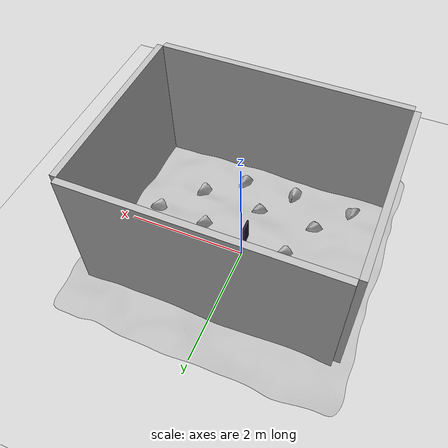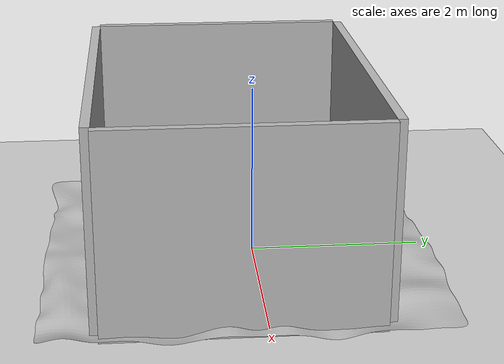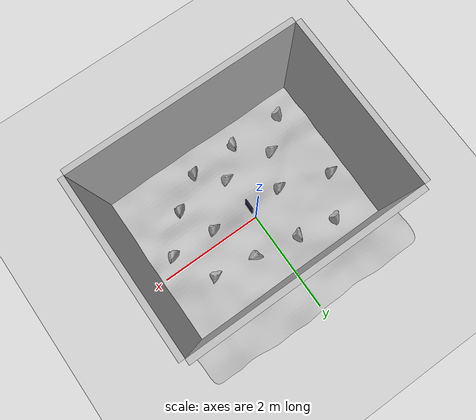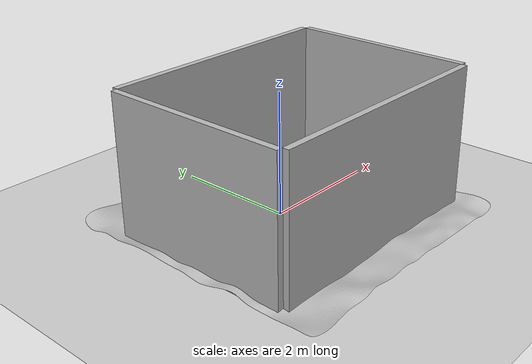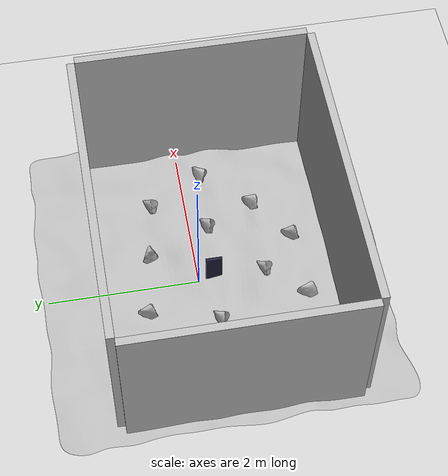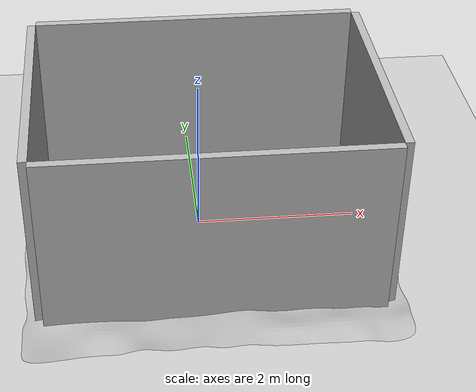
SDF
<sdf version="1.6">
 <world name="default">
  <model name="ground_plane">
   <static>1</static>
   <link name="link">
    <collision name="collision">
     <geometry><plane><normal>0 0 1</normal><size>100 100</size></plane></geometry>
     <surface><friction><ode><mu>100</mu><mu2>50</mu2></ode></friction></surface>
    </collision>
    <visual name="visual">
     <cast_shadows>0</cast_shadows>
     <geometry><plane><normal>0 0 1</normal><size>100 100</size></plane></geometry>
     <material>
      <script><uri>file://media/materials/scripts/gazebo.material</uri><name>Gazebo/Grey</name></script>
     </material>
    </visual>
   </link>
  </model>
  <gravity>0 0 -9.8</gravity>
  <magnetic_field>6e-06 2.3e-05 -4.2e-05</magnetic_field>
  <atmosphere type="adiabatic"/>
  <physics name="default_physics" default="0" type="ode">
   <max_step_size>0.02</max_step_size>
   <real_time_factor>1000</real_time_factor>
   <real_time_update_rate>0</real_time_update_rate>
  </physics>
  <scene>
   <ambient>0 0 0 1</ambient>
   <background>0 0 0 1</background>
   <grid>0</grid>
   <sky><time>13</time><sunrise>12</sunrise><sunset>12</sunset><clouds><humidity>0</humidity></clouds></sky>
   <shadows>1</shadows>
  </scene>
  <spherical_coordinates>
   <surface_model>EARTH_WGS84</surface_model>
   <latitude_deg>0</latitude_deg>
   <longitude_deg>0</longitude_deg>
   <elevation>0</elevation>
   <heading_deg>0</heading_deg>
  </spherical_coordinates>
  <model name="backwall">
   <pose>-1.98385 -0.26563 1.143 0 -0 0</pose>
   <static>1</static>
   <link name="link">
    <inertial>
     <mass>10</mass>
     <inertia><ixx>11.8074</ixx><ixy>0</ixy><ixz>0</ixz><iyy>4.34598</iyy><iyz>0</iyz><izz>7.47857</izz></inertia>
    </inertial>
    <collision name="collision"><geometry><box><size>0.1016 3 2.286</size></box></geometry></collision>
    <visual name="visual">
     <geometry><box><size>0.1016 3 2.286</size></box></geometry>
     <material>
      <script>
       <uri>model://backwall/materials/scripts</uri>
       <uri>model://backwall/materials/textures</uri>
       <name>backwall/wall</name>
      </script>
     </material>
    </visual>
   </link>
  </model>
  <model name="backwall_0">
   <pose>2.1151 -0.270631 1.143 0 -0 0</pose>
   <static>1</static>
   <link name="link">
    <inertial>
     <mass>10</mass>
     <inertia><ixx>11.8074</ixx><ixy>0</ixy><ixz>0</ixz><iyy>4.34598</iyy><iyz>0</iyz><izz>7.47857</izz></inertia>
    </inertial>
    <collision name="collision"><geometry><box><size>0.1016 3 2.286</size></box></geometry></collision>
    <visual name="visual">
     <geometry><box><size>0.1016 3 2.286</size></box></geometry>
     <material>
      <script>
       <uri>model://backwall/materials/scripts</uri>
       <uri>model://backwall/materials/textures</uri>
       <name>backwall/wall</name>
      </script>
     </material>
    </visual>
   </link>
  </model>
  <model name="sidewall">
   <pose>0.063459 -1.81178 1.143 0 -0 1.5708</pose>
   <static>1</static>
   <link name="link">
    <inertial>
     <mass>10</mass>
     <inertia><ixx>17.6174</ixx><ixy>0</ixy><ixz>0</ixz><iyy>4.34598</iyy><iyz>0</iyz><izz>13.2886</izz></inertia>
    </inertial>
    <collision name="collision"><geometry><box><size>0.1016 4 2.286</size></box></geometry></collision>
    <visual name="visual">
     <geometry><box><size>0.1016 4 2.286</size></box></geometry>
     <material>
      <script>
       <uri>model://sidewall/materials/scripts</uri>
       <uri>model://sidewall/materials/textures</uri>
       <name>sidewall/wall</name>
      </script>
     </material>
    </visual>
   </link>
  </model>
  <model name="sidewall_clone">
   <pose>0.070218 1.28129 1.143 0 -0 1.5708</pose>
   <static>1</static>
   <link name="link">
    <inertial>
     <mass>10</mass>
     <inertia><ixx>17.6174</ixx><ixy>0</ixy><ixz>0</ixz><iyy>4.34598</iyy><iyz>0</iyz><izz>13.2886</izz></inertia>
    </inertial>
    <collision name="collision"><geometry><box><size>0.1016 4 2.286</size></box></geometry></collision>
    <visual name="visual">
     <geometry><box><size>0.1016 4 2.286</size></box></geometry>
     <material>
      <script>
       <uri>model://sidewall/materials/scripts</uri>
       <uri>model://sidewall/materials/textures</uri>
       <name>sidewall/wall</name>
      </script>
     </material>
    </visual>
   </link>
  </model>
  <model name="monolith">
   <pose>0.010881 -0.203404 0.283819 0 -0 0</pose>
   <static>1</static>
   <link name="link">
    <inertial>
     <mass>2</mass>
     <inertia><ixx>0.0424</ixx><ixy>0</ixy><ixz>0</ixz><iyy>0.0348</iyy><iyz>0</iyz><izz>0.007841</izz></inertia>
    </inertial>
    <collision name="collision"><geometry><box><size>0.0254 0.2159 0.4572</size></box></geometry></collision>
    <visual name="visual">
     <geometry><box><size>0.0254 0.2159 0.4572</size></box></geometry>
     <material>
      <ambient>0.1 0.1 0.1 1</ambient>
      <diffuse>0.1 0.1 0.2 1</diffuse>
      <specular>0 0 0 0</specular>
      <emissive>0 0 0 1</emissive>
     </material>
    </visual>
   </link>
  </model>
  <model name="gymbox">
   <static>1</static>
   <link name="link">
    <inertial>
     <mass>1</mass>
     <inertia><ixx>0.001</ixx><ixy>0</ixy><ixz>0</ixz><iyy>0.001</iyy><iyz>0</iyz><izz>0.001</izz></inertia>
    </inertial>
    <collision name="collision">
     <geometry><mesh><uri>model://gymbox/meshes/model.dae</uri><scale>1 1 1</scale></mesh></geometry>
     <surface><friction><ode><mu>0.6</mu><mu2>0.6</mu2></ode></friction></surface>
    </collision>
    <visual name="visual">
     <geometry><mesh><uri>model://gymbox/meshes/model.dae</uri><scale>1 1 1</scale></mesh></geometry>
    </visual>
   </link>
   <pose>-2.23261 1.20045 0 0 -0 0</pose>
  </model>
  <light name="user_point_light_0" type="point">
   <pose>-0.510257 -0.317419 1 0 -0 0</pose>
   <diffuse>0.5 0.5 0.5 1</diffuse>
   <specular>0.1 0.1 0.1 1</specular>
   <attenuation>
    <range>20</range>
    <constant>0.5</constant>
    <linear>0.01</linear>
    <quadratic>0.001</quadratic>
   </attenuation>
   <cast_shadows>0</cast_shadows>
   <direction>0 0 -1</direction>
  </light>
  <model name="boulder_12">
   <static>1</static>
   <link name="link">
    <inertial>
     <pose>0.173878 -0.17802 2.88009 0 -0 0</pose>
     <mass>1</mass>
     <inertia>
      <ixx>1.8741e+06</ixx>
      <ixy>-208910</ixy>
      <ixz>205630</ixz>
      <iyy>2.40289e+06</iyy>
      <iyz>25458.7</iyz>
      <izz>1.98693e+06</izz>
     </inertia>
    </inertial>
    <collision name="collision">
     <geometry><mesh><uri>model://boulder/meshes/model.dae</uri><scale>0.15 0.15 0.15</scale></mesh></geometry>
     <surface><friction><ode><mu>0.6</mu><mu2>0.6</mu2></ode></friction></surface>
    </collision>
    <visual name="visual">
     <geometry><mesh><uri>model://boulder/meshes/model.dae</uri><scale>0.15 0.15 0.15</scale></mesh></geometry>
    </visual>
   </link>
   <pose>-0.455572 -1.37325 0.073468 0.184659 0 0.752468</pose>
  </model>
  <model name="boulder_0">
   <static>1</static>
   <link name="link">
    <inertial>
     <pose>0.173878 -0.17802 2.88009 0 -0 0</pose>
     <mass>1</mass>
     <inertia>
      <ixx>1.8741e+06</ixx>
      <ixy>-208910</ixy>
      <ixz>205630</ixz>
      <iyy>2.40289e+06</iyy>
      <iyz>25458.7</iyz>
      <izz>1.98693e+06</izz>
     </inertia>
    </inertial>
    <collision name="collision">
     <geometry><mesh><uri>model://boulder/meshes/model.dae</uri><scale>0.15 0.15 0.15</scale></mesh></geometry>
     <surface><friction><ode><mu>0.6</mu><mu2>0.6</mu2></ode></friction></surface>
    </collision>
    <visual name="visual">
     <geometry><mesh><uri>model://boulder/meshes/model.dae</uri><scale>0.15 0.15 0.15</scale></mesh></geometry>
    </visual>
   </link>
   <pose>-0.676522 -0.187467 0.082641 0 -0 0</pose>
  </model>
  <model name="boulder_1">
   <static>1</static>
   <link name="link">
    <inertial>
     <pose>0.173878 -0.17802 2.88009 0 -0 0</pose>
     <mass>1</mass>
     <inertia>
      <ixx>1.8741e+06</ixx>
      <ixy>-208910</ixy>
      <ixz>205630</ixz>
      <iyy>2.40289e+06</iyy>
      <iyz>25458.7</iyz>
      <izz>1.98693e+06</izz>
     </inertia>
    </inertial>
    <collision name="collision">
     <geometry><mesh><uri>model://boulder/meshes/model.dae</uri><scale>0.15 0.15 0.15</scale></mesh></geometry>
     <surface><friction><ode><mu>0.6</mu><mu2>0.6</mu2></ode></friction></surface>
    </collision>
    <visual name="visual">
     <geometry><mesh><uri>model://boulder/meshes/model.dae</uri><scale>0.15 0.15 0.15</scale></mesh></geometry>
    </visual>
   </link>
   <pose>-0.437419 0.726252 0.088825 0 -0 0.740829</pose>
  </model>
  <model name="boulder_2">
   <static>1</static>
   <link name="link">
    <inertial>
     <pose>0.173878 -0.17802 2.88009 0 -0 0</pose>
     <mass>1</mass>
     <inertia>
      <ixx>1.8741e+06</ixx>
      <ixy>-208910</ixy>
      <ixz>205630</ixz>
      <iyy>2.40289e+06</iyy>
      <iyz>25458.7</iyz>
      <izz>1.98693e+06</izz>
     </inertia>
    </inertial>
    <collision name="collision">
     <geometry><mesh><uri>model://boulder/meshes/model.dae</uri><scale>0.15 0.15 0.15</scale></mesh></geometry>
     <surface><friction><ode><mu>0.6</mu><mu2>0.6</mu2></ode></friction></surface>
    </collision>
    <visual name="visual">
     <geometry><mesh><uri>model://boulder/meshes/model.dae</uri><scale>0.15 0.15 0.15</scale></mesh></geometry>
    </visual>
   </link>
   <pose>-1.17338 0.850785 0.088269 -0.174777 -0 0.539563</pose>
  </model>
  <model name="boulder_3">
   <static>1</static>
   <link name="link">
    <inertial>
     <pose>0.173878 -0.17802 2.88009 0 -0 0</pose>
     <mass>1</mass>
     <inertia>
      <ixx>1.8741e+06</ixx>
      <ixy>-208910</ixy>
      <ixz>205630</ixz>
      <iyy>2.40289e+06</iyy>
      <iyz>25458.7</iyz>
      <izz>1.98693e+06</izz>
     </inertia>
    </inertial>
    <collision name="collision">
     <geometry><mesh><uri>model://boulder/meshes/model.dae</uri><scale>0.15 0.15 0.15</scale></mesh></geometry>
     <surface><friction><ode><mu>0.6</mu><mu2>0.6</mu2></ode></friction></surface>
    </collision>
    <visual name="visual">
     <geometry><mesh><uri>model://boulder/meshes/model.dae</uri><scale>0.15 0.15 0.15</scale></mesh></geometry>
    </visual>
   </link>
   <pose>-1.64248 0.134313 0.089358 0 -0 0</pose>
  </model>
  <model name="boulder_4">
   <static>1</static>
   <link name="link">
    <inertial>
     <pose>0.173878 -0.17802 2.88009 0 -0 0</pose>
     <mass>1</mass>
     <inertia>
      <ixx>1.8741e+06</ixx>
      <ixy>-208910</ixy>
      <ixz>205630</ixz>
      <iyy>2.40289e+06</iyy>
      <iyz>25458.7</iyz>
      <izz>1.98693e+06</izz>
     </inertia>
    </inertial>
    <collision name="collision">
     <geometry><mesh><uri>model://boulder/meshes/model.dae</uri><scale>0.15 0.15 0.15</scale></mesh></geometry>
     <surface><friction><ode><mu>0.6</mu><mu2>0.6</mu2></ode></friction></surface>
    </collision>
    <visual name="visual">
     <geometry><mesh><uri>model://boulder/meshes/model.dae</uri><scale>0.15 0.15 0.15</scale></mesh></geometry>
    </visual>
   </link>
   <pose>-0.966331 -0.854601 0.094733 -0.227838 -0.109331 0</pose>
  </model>
  <model name="boulder_5">
   <static>1</static>
   <link name="link">
    <inertial>
     <pose>0.173878 -0.17802 2.88009 0 -0 0</pose>
     <mass>1</mass>
     <inertia>
      <ixx>1.8741e+06</ixx>
      <ixy>-208910</ixy>
      <ixz>205630</ixz>
      <iyy>2.40289e+06</iyy>
      <iyz>25458.7</iyz>
      <izz>1.98693e+06</izz>
     </inertia>
    </inertial>
    <collision name="collision">
     <geometry><mesh><uri>model://boulder/meshes/model.dae</uri><scale>0.15 0.15 0.15</scale></mesh></geometry>
     <surface><friction><ode><mu>0.6</mu><mu2>0.6</mu2></ode></friction></surface>
    </collision>
    <visual name="visual">
     <geometry><mesh><uri>model://boulder/meshes/model.dae</uri><scale>0.15 0.15 0.15</scale></mesh></geometry>
    </visual>
   </link>
   <pose>-1.47158 -1.38165 0.105495 -0.315914 0 0.698217</pose>
  </model>
  <model name="boulder_6">
   <static>1</static>
   <link name="link">
    <inertial>
     <pose>0.173878 -0.17802 2.88009 0 -0 0</pose>
     <mass>1</mass>
     <inertia>
      <ixx>1.8741e+06</ixx>
      <ixy>-208910</ixy>
      <ixz>205630</ixz>
      <iyy>2.40289e+06</iyy>
      <iyz>25458.7</iyz>
      <izz>1.98693e+06</izz>
     </inertia>
    </inertial>
    <collision name="collision">
     <geometry><mesh><uri>model://boulder/meshes/model.dae</uri><scale>0.15 0.15 0.15</scale></mesh></geometry>
     <surface><friction><ode><mu>0.6</mu><mu2>0.6</mu2></ode></friction></surface>
    </collision>
    <visual name="visual">
     <geometry><mesh><uri>model://boulder/meshes/model.dae</uri><scale>0.15 0.15 0.15</scale></mesh></geometry>
    </visual>
   </link>
   <pose>0.467936 -1.33921 0.089866 -0.057246 -0 0.508852</pose>
  </model>
  <model name="boulder_7">
   <static>1</static>
   <link name="link">
    <inertial>
     <pose>0.173878 -0.17802 2.88009 0 -0 0</pose>
     <mass>1</mass>
     <inertia>
      <ixx>1.8741e+06</ixx>
      <ixy>-208910</ixy>
      <ixz>205630</ixz>
      <iyy>2.40289e+06</iyy>
      <iyz>25458.7</iyz>
      <izz>1.98693e+06</izz>
     </inertia>
    </inertial>
    <collision name="collision">
     <geometry><mesh><uri>model://boulder/meshes/model.dae</uri><scale>0.15 0.15 0.15</scale></mesh></geometry>
     <surface><friction><ode><mu>0.6</mu><mu2>0.6</mu2></ode></friction></surface>
    </collision>
    <visual name="visual">
     <geometry><mesh><uri>model://boulder/meshes/model.dae</uri><scale>0.15 0.15 0.15</scale></mesh></geometry>
    </visual>
   </link>
   <pose>0.762485 -0.241439 0.101356 0 -0 0</pose>
  </model>
  <model name="boulder_8">
   <static>1</static>
   <link name="link">
    <inertial>
     <pose>0.173878 -0.17802 2.88009 0 -0 0</pose>
     <mass>1</mass>
     <inertia>
      <ixx>1.8741e+06</ixx>
      <ixy>-208910</ixy>
      <ixz>205630</ixz>
      <iyy>2.40289e+06</iyy>
      <iyz>25458.7</iyz>
      <izz>1.98693e+06</izz>
     </inertia>
    </inertial>
    <collision name="collision">
     <geometry><mesh><uri>model://boulder/meshes/model.dae</uri><scale>0.15 0.15 0.15</scale></mesh></geometry>
     <surface><friction><ode><mu>0.6</mu><mu2>0.6</mu2></ode></friction></surface>
    </collision>
    <visual name="visual">
     <geometry><mesh><uri>model://boulder/meshes/model.dae</uri><scale>0.15 0.15 0.15</scale></mesh></geometry>
    </visual>
   </link>
   <pose>0.424542 0.596922 0.095794 0 0 -0.866844</pose>
  </model>
  <model name="boulder_9">
   <static>1</static>
   <link name="link">
    <inertial>
     <pose>0.173878 -0.17802 2.88009 0 -0 0</pose>
     <mass>1</mass>
     <inertia>
      <ixx>1.8741e+06</ixx>
      <ixy>-208910</ixy>
      <ixz>205630</ixz>
      <iyy>2.40289e+06</iyy>
      <iyz>25458.7</iyz>
      <izz>1.98693e+06</izz>
     </inertia>
    </inertial>
    <collision name="collision">
     <geometry><mesh><uri>model://boulder/meshes/model.dae</uri><scale>0.15 0.15 0.15</scale></mesh></geometry>
     <surface><friction><ode><mu>0.6</mu><mu2>0.6</mu2></ode></friction></surface>
    </collision>
    <visual name="visual">
     <geometry><mesh><uri>model://boulder/meshes/model.dae</uri><scale>0.15 0.15 0.15</scale></mesh></geometry>
    </visual>
   </link>
   <pose>1.07022 -0.895936 0.064711 0.125047 -0 0.30973</pose>
  </model>
  <model name="boulder_10">
   <static>1</static>
   <link name="link">
    <inertial>
     <pose>0.173878 -0.17802 2.88009 0 -0 0</pose>
     <mass>1</mass>
     <inertia>
      <ixx>1.8741e+06</ixx>
      <ixy>-208910</ixy>
      <ixz>205630</ixz>
      <iyy>2.40289e+06</iyy>
      <iyz>25458.7</iyz>
      <izz>1.98693e+06</izz>
     </inertia>
    </inertial>
    <collision name="collision">
     <geometry><mesh><uri>model://boulder/meshes/model.dae</uri><scale>0.15 0.15 0.15</scale></mesh></geometry>
     <surface><friction><ode><mu>0.6</mu><mu2>0.6</mu2></ode></friction></surface>
    </collision>
    <visual name="visual">
     <geometry><mesh><uri>model://boulder/meshes/model.dae</uri><scale>0.15 0.15 0.15</scale></mesh></geometry>
    </visual>
   </link>
   <pose>1.64689 -0.260499 0.092498 0.238836 -0.172205 -0.041698</pose>
  </model>
  <model name="boulder_11">
   <static>1</static>
   <link name="link">
    <inertial>
     <pose>0.173878 -0.17802 2.88009 0 -0 0</pose>
     <mass>1</mass>
     <inertia>
      <ixx>1.8741e+06</ixx>
      <ixy>-208910</ixy>
      <ixz>205630</ixz>
      <iyy>2.40289e+06</iyy>
      <iyz>25458.7</iyz>
      <izz>1.98693e+06</izz>
     </inertia>
    </inertial>
    <collision name="collision">
     <geometry><mesh><uri>model://boulder/meshes/model.dae</uri><scale>0.15 0.15 0.15</scale></mesh></geometry>
     <surface><friction><ode><mu>0.6</mu><mu2>0.6</mu2></ode></friction></surface>
    </collision>
    <visual name="visual">
     <geometry><mesh><uri>model://boulder/meshes/model.dae</uri><scale>0.15 0.15 0.15</scale></mesh></geometry>
    </visual>
   </link>
   <pose>1.22069 0.454796 0.075337 -0.235534 0 0</pose>
  </model>
  <model name="boulder_13">
   <static>1</static>
   <link name="link">
    <inertial>
     <pose>0.173878 -0.17802 2.88009 0 -0 0</pose>
     <mass>1</mass>
     <inertia>
      <ixx>1.8741e+06</ixx>
      <ixy>-208910</ixy>
      <ixz>205630</ixz>
      <iyy>2.40289e+06</iyy>
      <iyz>25458.7</iyz>
      <izz>1.98693e+06</izz>
     </inertia>
    </inertial>
    <collision name="collision">
     <geometry><mesh><uri>model://boulder/meshes/model.dae</uri><scale>0.15 0.15 0.15</scale></mesh></geometry>
     <surface><friction><ode><mu>0.6</mu><mu2>0.6</mu2></ode></friction></surface>
    </collision>
    <visual name="visual">
     <geometry><mesh><uri>model://boulder/meshes/model.dae</uri><scale>0.15 0.15 0.15</scale></mesh></geometry>
    </visual>
   </link>
   <pose>0.02861 -0.903439 0.036382 -0.227838 -0.109331 0</pose>
  </model>
 </world>
</sdf>
